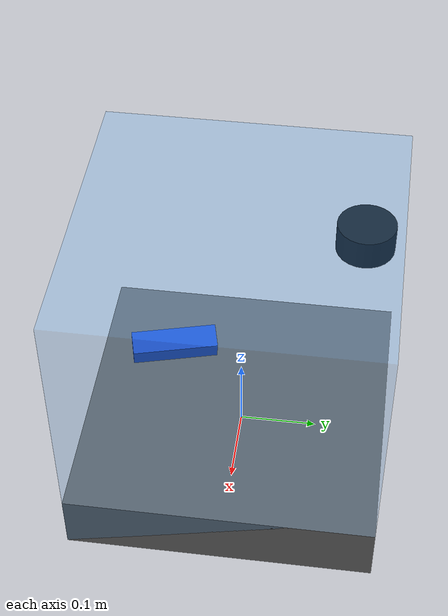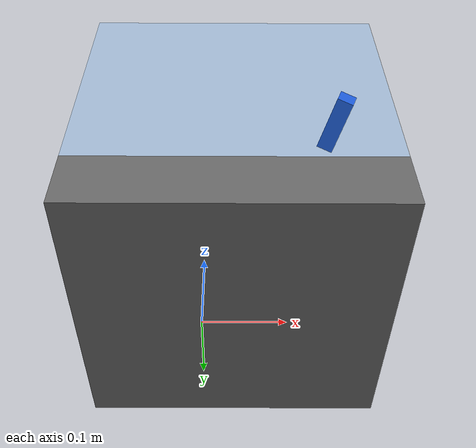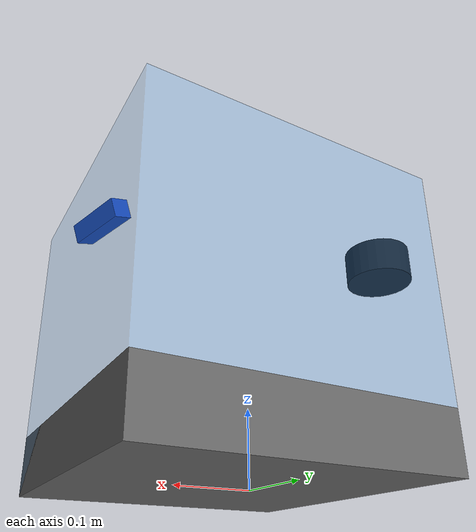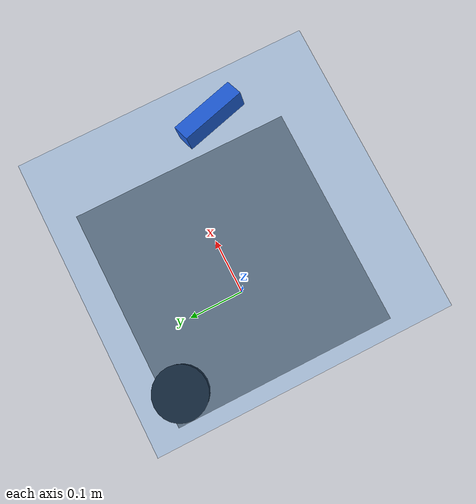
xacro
<?xml version="1.0"?>
<robot name="ghost_push_back" xmlns:xacro="http://www.ros.org/wiki/xacro">

  <link name="base_link">
    <visual name="base">
      <origin xyz="0.0381 0 0.0381" rpy="0 0 0"/>
      <geometry>
        <box size="0.381 0.381 0.0762"/>
      </geometry>
      <material name="grey">
        <color rgba="0.4 0.4 0.4 1.0"/>
      </material>
    </visual>
    <visual name="bounding_cube">
      <origin xyz="0.0381 0 0.1905" rpy="0 0 0"/>
      <geometry>
        <box size="0.381 0.381 0.381"/>
      </geometry>
      <material name="ghost_cube">
        <color rgba="0.2 0.6 1.0 0.12"/>
      </material>
    </visual>
    <collision>
      <origin xyz="0.0381 0 0.0381" rpy="0 0 0"/>
      <geometry>
        <box size="0.381 0.381 0.0762"/>
      </geometry>
    </collision>
  </link>

  <link name="lidar_link">
    <visual>
      <geometry>
        <cylinder radius="0.038" length="0.04"/>
      </geometry>
      <material name="black">
        <color rgba="0.05 0.05 0.05 1.0"/>
      </material>
    </visual>
    <collision>
      <geometry>
        <cylinder radius="0.038" length="0.04"/>
      </geometry>
    </collision>
  </link>

  <joint name="base_link_to_lidar_link" type="fixed">
    <parent link="base_link"/>
    <child link="lidar_link"/>
    <origin xyz="-0.1016 0.14605 0.257175" rpy="0 0 0"/>
  </joint>

  <link name="camera_link">
    <visual>
      <geometry>
        <box size="0.025 0.090 0.025"/>
      </geometry>
      <material name="realsense_blue">
        <color rgba="0.1 0.3 0.8 1.0"/>
      </material>
    </visual>
    <collision>
      <geometry>
        <box size="0.025 0.090 0.025"/>
      </geometry>
    </collision>
  </link>

  <joint name="base_link_to_camera_link" type="fixed">
    <parent link="base_link"/>
    <child link="camera_link"/>
    <origin xyz="0.193675 -0.0479298 0.342417" rpy="0 0.349066 0.261799"/>
  </joint>

  <!-- IMU. -->
  <link name="imu_link"/>

  <!-- TODO: update with the exact mounting offset/orientation. The EKF only
       fuses IMU yaw, so the precise translation doesn't really matter; zeros
       are fine for now. -->
  <joint name="base_link_to_imu_link" type="fixed">
    <parent link="base_link"/>
    <child link="imu_link"/>
    <origin xyz="0 0 0" rpy="0 0 0"/>
  </joint>

</robot>
